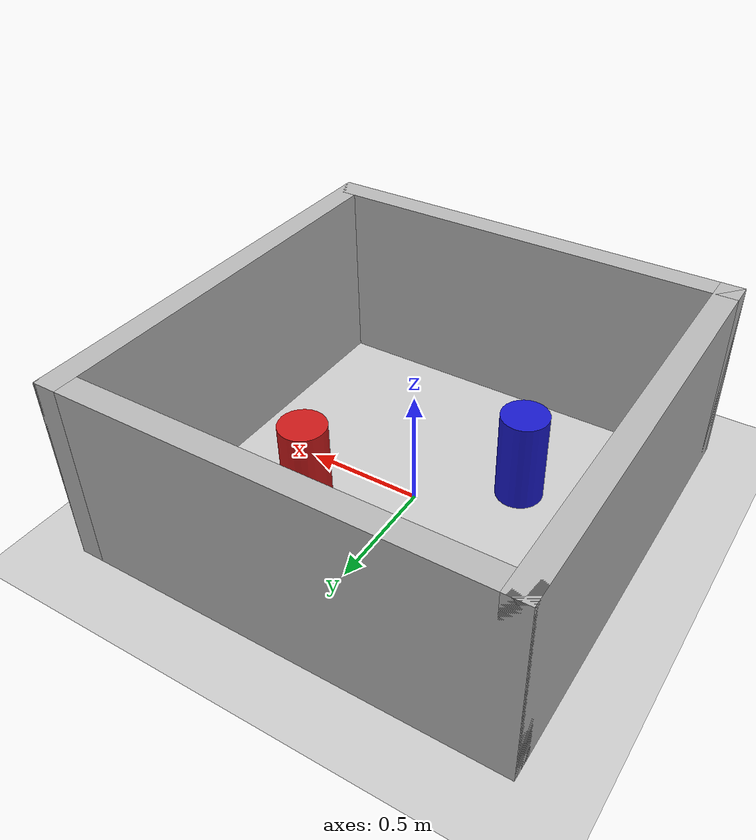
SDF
<?xml version="1.0" ?>
<sdf version="1.5">
  <world name="default">
    <include>
      <uri>model://sun</uri>
    </include>
    <include>
      <uri>model://ground_plane</uri>
    </include>

    <!-- Obstacle 1: Red cylinder (20 cm diameter, radius 0.10m) -->
    <model name="cylinder_obstacle_1">
      <static>true</static>
      <pose>0.35 0.25 0.2 0 0 0</pose>
      <link name="link">
        <collision name="collision">
          <geometry><cylinder><radius>0.10</radius><length>0.4</length></cylinder></geometry>
        </collision>
        <visual name="visual">
          <geometry><cylinder><radius>0.10</radius><length>0.4</length></cylinder></geometry>
          <material><ambient>0.8 0.1 0.1 1</ambient><diffuse>0.8 0.1 0.1 1</diffuse></material>
        </visual>
      </link>
    </model>

    <!-- Obstacle 2: Blue cylinder (20 cm diameter, radius 0.10m) -->
    <model name="cylinder_obstacle_2">
      <static>true</static>
      <pose>-0.35 -0.25 0.2 0 0 0</pose>
      <link name="link">
        <collision name="collision">
          <geometry><cylinder><radius>0.10</radius><length>0.4</length></cylinder></geometry>
        </collision>
        <visual name="visual">
          <geometry><cylinder><radius>0.10</radius><length>0.4</length></cylinder></geometry>
          <material><ambient>0.1 0.1 0.8 1</ambient><diffuse>0.1 0.1 0.8 1</diffuse></material>
        </visual>
      </link>
    </model>

    <!-- 1.65x1.65 m INTERIOR room walls -->
    <model name="walls">
      <static>true</static>
      <link name="link">
        <!-- North Wall -->
        <collision name="n"><pose>0 0.875 0.4 0 0 0</pose><geometry><box><size>1.85 0.1 0.8</size></box></geometry></collision>
        <visual name="n_v"><pose>0 0.875 0.4 0 0 0</pose><geometry><box><size>1.85 0.1 0.8</size></box></geometry></visual>

        <!-- South Wall -->
        <collision name="s"><pose>0 -0.875 0.4 0 0 0</pose><geometry><box><size>1.85 0.1 0.8</size></box></geometry></collision>
        <visual name="s_v"><pose>0 -0.875 0.4 0 0 0</pose><geometry><box><size>1.85 0.1 0.8</size></box></geometry></visual>

        <!-- East Wall -->
        <collision name="e"><pose>0.875 0 0.4 0 0 0</pose><geometry><box><size>0.1 1.85 0.8</size></box></geometry></collision>
        <visual name="e_v"><pose>0.875 0 0.4 0 0 0</pose><geometry><box><size>0.1 1.85 0.8</size></box></geometry></visual>

        <!-- West Wall -->
        <collision name="w"><pose>-0.875 0 0.4 0 0 0</pose><geometry><box><size>0.1 1.85 0.8</size></box></geometry></collision>
        <visual name="w_v"><pose>-0.875 0 0.4 0 0 0</pose><geometry><box><size>0.1 1.85 0.8</size></box></geometry></visual>
      </link>
    </model>
  </world>
</sdf>
